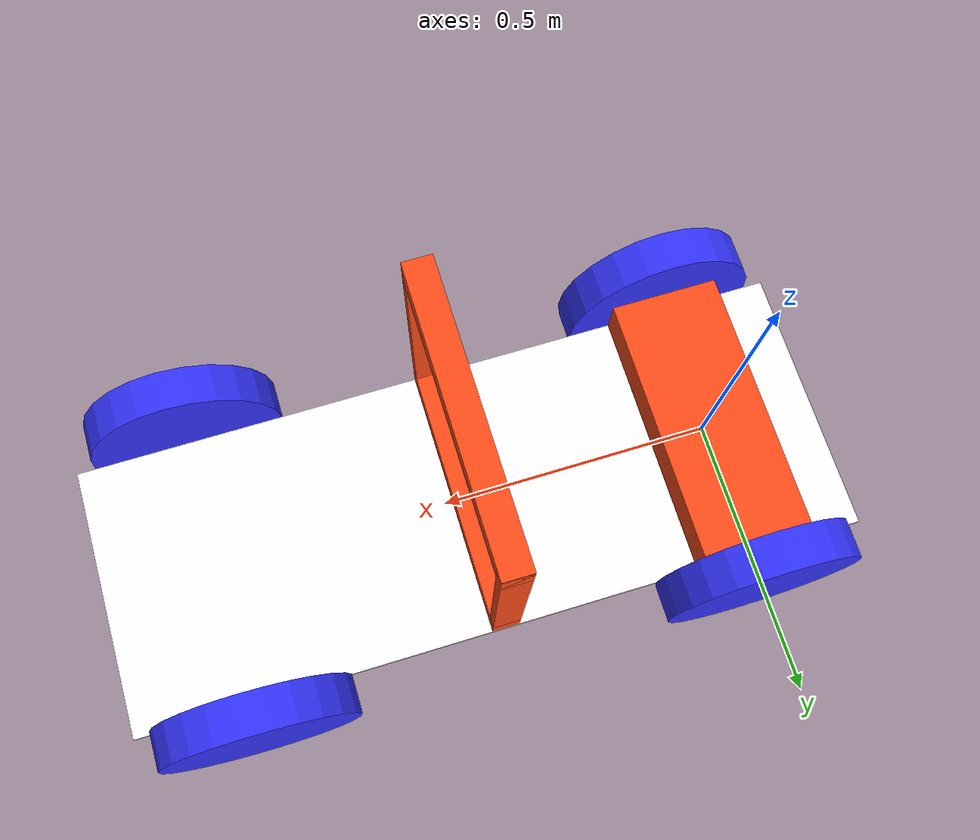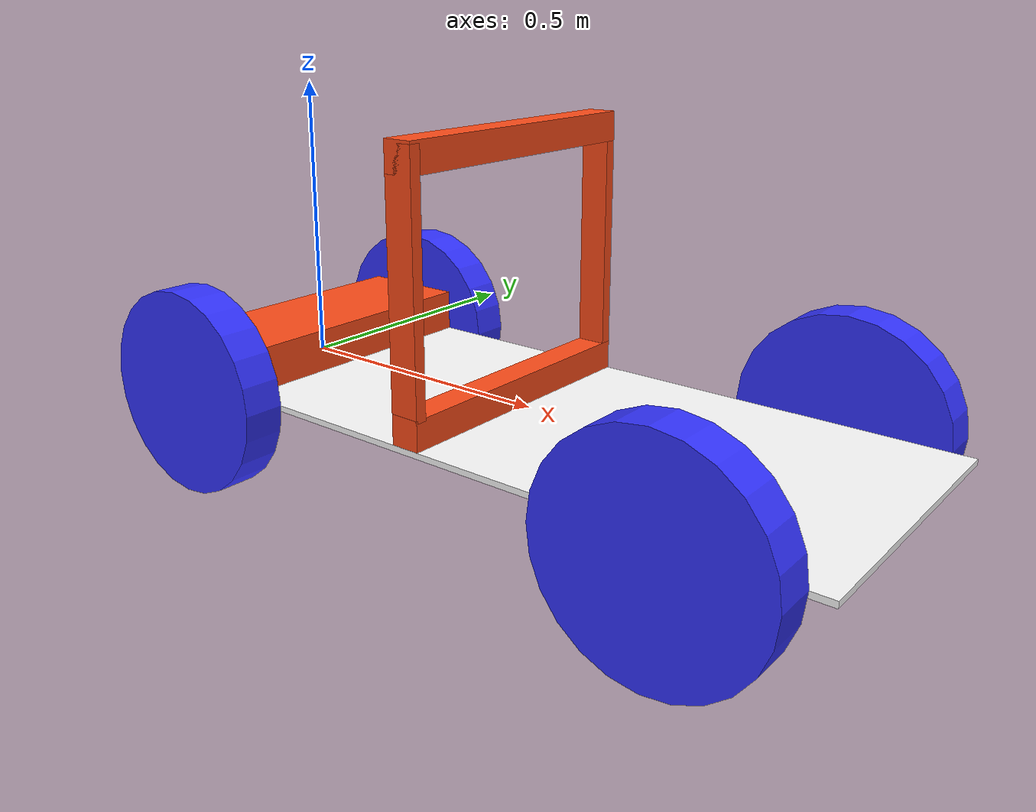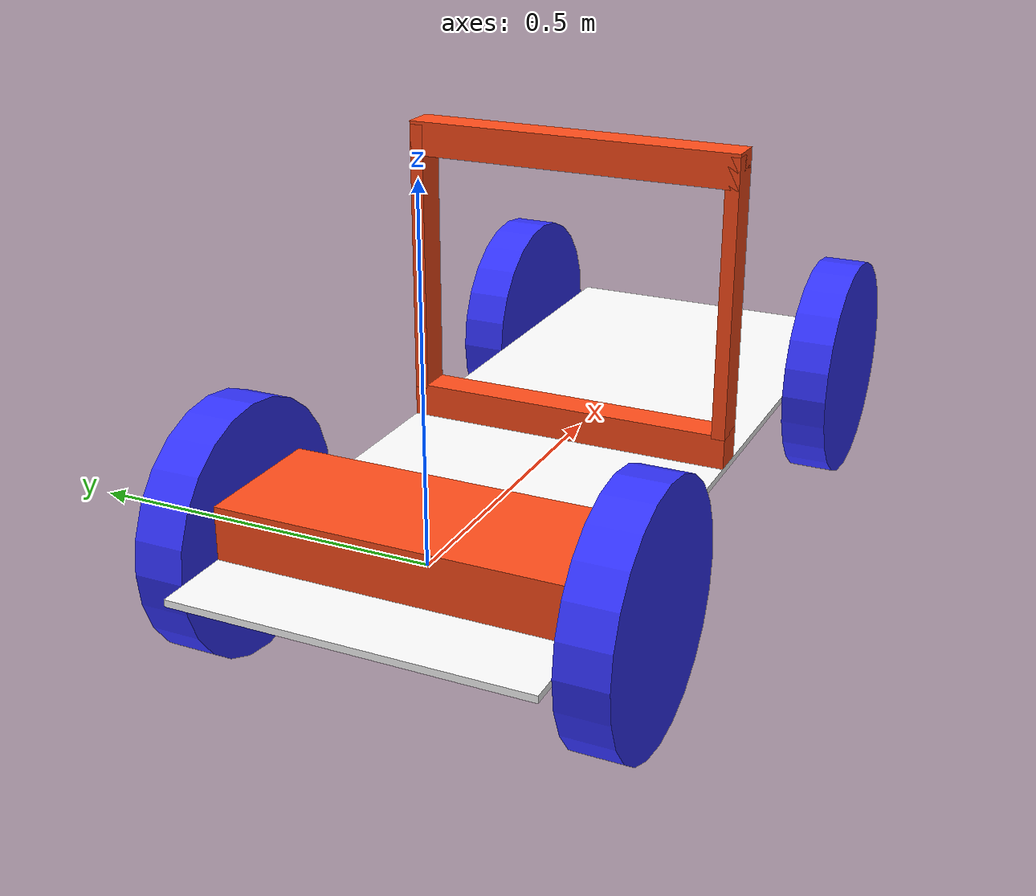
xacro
<?xml version="1.0"?>
<robot xmlns:xacro="http://www.ros.org/wiki/xacro" >

    <xacro:include filename="inertial_macros.xacro"/>

    <xacro:property name="chassis_length" value="1.35" />
    <xacro:property name="chassis_width" value="0.5" />
    <xacro:property name="chassis_height" value="0.01" />
    <xacro:property name="chassis_mass" value="1.0" />
    <xacro:property name="wheel_radius" value="0.1778" />
    <xacro:property name="wheel_thickness" value="0.07" />
    <xacro:property name="wheel_mass" value="0.05" />
    <xacro:property name="wheel_offset_x" value="0.2135" />
    <xacro:property name="wheel_offset_y" value="0.285" />
    <xacro:property name="wheel_offset_z" value="0.01" />
    <xacro:property name="caster_wheel_radius" value="0.1778"/>
    <xacro:property name="caster_wheel_mass" value="0.01"/>
    <xacro:property name="caster_wheel_offset_x" value="1.1365" />

    <material name="white">
        <color rgba="1 1 1 1" />
    </material>

    <material name="orange">
        <color rgba="1 0.3 0.1 1"/>
    </material>

    <material name="blue">
        <color rgba="0.2 0.2 1 1"/>
    </material>

    <material name="black">
        <color rgba="0 0 0 1"/>
    </material>

    <material name="red">
        <color rgba="1 0 0 1"/>
    </material>

    <!-- BASE LINK -->

    <link name="base_link">

    </link>

    <!-- BASE_FOOTPRINT LINK -->

    <joint name="base_footprint_joint" type="fixed">
    	<parent link="base_link"/>
    	<child link="base_footprint"/>
    	<origin xyz="0 0 0" rpy="0 0 0"/>
    </joint>

    <link name="base_footprint">
    </link>

    <!-- CHASSIS LINK -->

    <joint name="chassis_joint" type="fixed">
        <parent link="base_link"/>
        <child link="chassis"/>
        <origin xyz="${-wheel_offset_x} 0 ${-wheel_offset_z}"/>
    </joint>

    <link name="chassis">
        <visual>
            <origin xyz="${chassis_length/2} 0 ${chassis_height/2}"/>
            <geometry>
                <box size="${chassis_length} ${chassis_width} ${chassis_height}"/>
            </geometry>
            <material name="white"/>
        </visual>
        <collision>
            <origin xyz="${chassis_length/2} 0 ${chassis_height/2}"/>
            <geometry>
                <box size="${chassis_length} ${chassis_width} ${chassis_height}"/>
            </geometry>
        </collision>
        <xacro:inertial_box mass="0.5" x="${chassis_length}" y="${chassis_width}" z="${chassis_height}">
            <origin xyz="${chassis_length/2} 0 ${chassis_height/2}" rpy="0 0 0"/>
        </xacro:inertial_box>
    </link>

    <gazebo reference="chassis">
        <material>Gazebo/White</material>
    </gazebo>

    <!-- BACK LEFT WHEEL LINK -->

    <joint name="left_wheel_joint" type="continuous">
        <parent link="base_link"/>
        <child link="left_wheel"/>
        <origin xyz="0  ${wheel_offset_y} 0" rpy="-${pi/2} 0 0" />
        <axis xyz="0 0 1"/>
    </joint>

    <link name="left_wheel">
        <visual>
            <geometry>
                <cylinder radius="${wheel_radius}" length="0.07"/>
            </geometry>
            <material name="blue"/>
        </visual>
        <collision>
            <geometry>
                <sphere radius="${wheel_radius}"/>
            </geometry>
        </collision>
        <xacro:inertial_cylinder mass="${wheel_mass}" length="${wheel_thickness}" radius="${wheel_radius}">
            <origin xyz="0 0 0" rpy="0 0 0"/>
        </xacro:inertial_cylinder>
    </link>

    <gazebo reference="left_wheel">
        <material>Gazebo/Blue</material>
    </gazebo>

    <!-- BACK RIGHT WHEEL LINK -->

    <joint name="right_wheel_joint" type="continuous">
        <parent link="base_link"/>
        <child link="right_wheel"/>
        <origin xyz="0 ${-wheel_offset_y} 0" rpy="${pi/2} 0 0" />
        <axis xyz="0 0 -1"/>
    </joint>

    <link name="right_wheel">
        <visual>
            <geometry>
                <cylinder radius="${wheel_radius}" length="${wheel_thickness}"/>
            </geometry>
            <material name="blue"/>
        </visual>
        <collision>
            <geometry>
                <sphere radius="${wheel_radius}"/>
            </geometry>
        </collision>
        <xacro:inertial_cylinder mass="${wheel_mass}" length="${wheel_thickness}" radius="${wheel_radius}">
            <origin xyz="0 0 0" rpy="0 0 0"/>
        </xacro:inertial_cylinder>
    </link>

    <gazebo reference="right_wheel">
        <material>Gazebo/Blue</material>
    </gazebo>

    <!-- FRONT LEFT WHEEL LINK -->

    <joint name="front_left_wheel_joint" type="fixed">
        <parent link="chassis"/>
        <child link="front_left_wheel"/>
        <origin xyz="${caster_wheel_offset_x} ${wheel_offset_y} ${wheel_offset_z}" rpy="-${pi/2} 0 0" />
        <axis xyz="0 0 1"/>
    </joint>

    <link name="front_left_wheel">
        <visual>
            <geometry>
                <cylinder radius="${caster_wheel_radius}" length="${wheel_thickness}"/>
            </geometry>
            <material name="blue"/>
        </visual>
        <collision>
            <geometry>
                <sphere radius="${caster_wheel_radius}"/>
            </geometry>
        </collision>
        <xacro:inertial_cylinder mass="${caster_wheel_mass}" length="${wheel_thickness}" radius="${caster_wheel_radius}">
            <origin xyz="0 0 0" rpy="0 0 0"/>
        </xacro:inertial_cylinder>
    </link>

    <gazebo reference="front_left_wheel">
        <material>Gazebo/Blue</material>
        <mu1 value="0.001"/>
        <mu2 value="0.001"/>
    </gazebo>

    <!-- FRONT RIGHT WHEEL LINK -->

    <joint name="front_right_wheel_joint" type="fixed">
        <parent link="chassis"/>
        <child link="front_right_wheel"/>
        <origin xyz="${caster_wheel_offset_x} ${-wheel_offset_y} ${wheel_offset_z}" rpy="${pi/2} 0 0" />
        <axis xyz="0 0 -1"/>
    </joint>

    <link name="front_right_wheel">
        <visual>
            <geometry>
                <cylinder radius="${caster_wheel_radius}" length="${wheel_thickness}"/>
            </geometry>
            <material name="blue"/>
        </visual>
        <collision>
            <geometry>
                <sphere radius="${caster_wheel_radius}"/>
            </geometry>
        </collision>
        <xacro:inertial_cylinder mass="${caster_wheel_mass}" length="${wheel_thickness}" radius="${caster_wheel_radius}">
            <origin xyz="0 0 0" rpy="0 0 0"/>
        </xacro:inertial_cylinder>
    </link>

    <gazebo reference="front_right_wheel">
        <material>Gazebo/Blue</material>
        <mu1 value="0.001"/>
        <mu2 value="0.001"/>
    </gazebo>

    <!-- TOWER -->
    <!-- Needs to be 0.510m tall -->

    <joint name="tower" type="fixed">
        <parent link="base_link"/>
        <child link="tower"/>
        <origin xyz="0.4615 0 0"/>
    </joint>

    <link name="tower">
        <visual>
            <origin xyz="0 0 0.025"/>
            <geometry>
                <box size="0.05 0.5 0.05"/>
            </geometry>
            <material name="orange"/>
        </visual>
        <collision>
            <origin xyz="0 0 0.025"/>
            <geometry>
                <box size="0.05 0.5 0.05"/>
            </geometry>
        </collision>
        <xacro:inertial_box mass="0.5" x="0.05" y="0.5" z="0.05">
            <origin xyz="0 0 0.025" rpy="0 0 0"/>
        </xacro:inertial_box>
    </link>

    <gazebo reference="tower">
        <material>Gazebo/White</material>
    </gazebo>

    <!-- MOTOR AND GEARBOX LINK -->

    <joint name="motor_joint" type="fixed">
        <parent link="base_link"/>
        <child link="motor"/>
        <origin xyz="0 0 0"/>
    </joint>

    <link name="motor">
        <visual>
            <origin xyz="0 0 0.0375"/>
            <geometry>
                <box size="0.2 0.5 0.075"/>
            </geometry>
            <material name="orange"/>
        </visual>
        <collision>
            <origin xyz="0 0 0.0375"/>
            <geometry>
                <box size="0.2 0.5 0.075"/>
            </geometry>
        </collision>
        <xacro:inertial_box mass="1.5" x="0.2" y="0.5" z="0.075">
            <origin xyz="0 0 0.0375" rpy="0 0 0"/>
        </xacro:inertial_box>
    </link>

    <gazebo reference="motor">
        <material>Gazebo/Orange</material>
    </gazebo>

    <!-- TOWER HEIGHT LEFT -->
    <!-- Needs to be 0.510m tall -->

    <joint name="tower_up_left" type="fixed">
        <parent link="base_link"/>
        <child link="tower_up_left"/>
        <origin xyz="0.4615 0 0"/>
    </joint>

    <link name="tower_up_left">
        <visual>
            <origin xyz="0 -0.24 0.25"/>
            <geometry>
                <box size="0.05 0.02 0.410"/>
            </geometry>
            <material name="orange"/>
        </visual>
        <collision>
            <origin xyz="0 -0.24 0.25"/>
            <geometry>
                <box size="0.05 0.02 0.410"/>
            </geometry>
        </collision>
        <xacro:inertial_box mass="0.5" x="0.05" y="0.02" z="0.410">
            <origin xyz="0 -0.24 0.25" rpy="0 0 0"/>
        </xacro:inertial_box>
    </link>

    <!-- TOWER HEIGHT RIGHT-->
    <!-- Needs to be 0.510m tall -->

    <joint name="tower_up_right" type="fixed">
        <parent link="base_link"/>
        <child link="tower_up_right"/>
        <origin xyz="0.4615 0 0"/>
    </joint>

    <link name="tower_up_right">
        <visual>
            <origin xyz="0 0.24 0.25"/>
            <geometry>
                <box size="0.05 0.02 0.410"/>
            </geometry>
            <material name="orange"/>
        </visual>
        <collision>
            <origin xyz="0 0.24 0.25"/>
            <geometry>
                <box size="0.05 0.02 0.410"/>
            </geometry>
        </collision>
        <xacro:inertial_box mass="0.5" x="0.05" y="0.02" z="0.410">
            <origin xyz="0 0.24 0.25" rpy="0 0 0"/>
        </xacro:inertial_box>
    </link>

    <!-- TOWER TOP -->
    <!-- Needs to be 0.510m tall -->

    <joint name="tower_top" type="fixed">
        <parent link="base_link"/>
        <child link="tower_top"/>
        <origin xyz="0.4615 0 0"/>
    </joint>

    <link name="tower_top">
        <visual>
            <origin xyz="0 0 0.435"/>
            <geometry>
                <box size="0.05 0.5 0.05"/>
            </geometry>
            <material name="orange"/>
        </visual>
        <collision>
            <origin xyz="0 0 0.435"/>
            <geometry>
                <box size="0.05 0.5 0.05"/>
            </geometry>
        </collision>
        <xacro:inertial_box mass="0.5" x="0.05" y="0.5" z="0.05">
            <origin xyz="0 0 0.435" rpy="0 0 0"/>
        </xacro:inertial_box>
    </link>

</robot>
